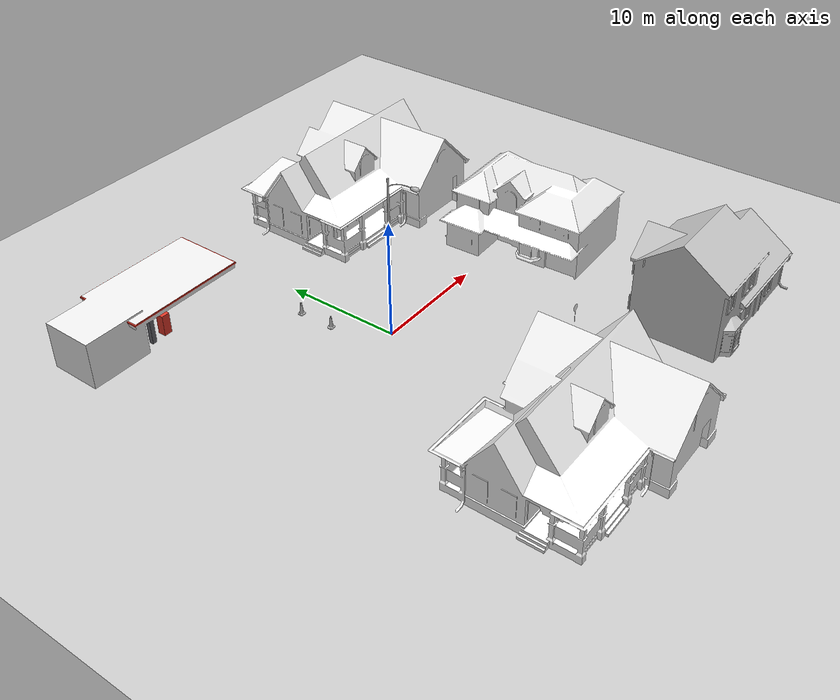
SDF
<sdf version="1.7">
 <world name="default">
  <light name="sun" type="directional">
   <pose>0 0 10 0 -0 0</pose>
   <diffuse>0.8 0.8 0.8 1</diffuse>
   <specular>0.2 0.2 0.2 1</specular>
   <attenuation>
    <range>1000</range>
    <constant>0.9</constant>
    <linear>0.01</linear>
    <quadratic>0.001</quadratic>
   </attenuation>
   <direction>-0.5 0.1 -0.9</direction>
   <spot><inner_angle>0</inner_angle><outer_angle>0</outer_angle><falloff>0</falloff></spot>
  </light>
  <model name="ground_plane">
   <static>1</static>
   <link name="link">
    <collision name="collision">
     <geometry><plane><normal>0 0 1</normal><size>100 100</size></plane></geometry>
     <surface><friction><ode><mu>100</mu><mu2>50</mu2></ode></friction></surface>
    </collision>
    <visual name="visual">
     <cast_shadows>0</cast_shadows>
     <geometry><plane><normal>0 0 1</normal><size>100 100</size></plane></geometry>
     <material>
      <script><uri>file://media/materials/scripts/gazebo.material</uri><name>Gazebo/Grey</name></script>
     </material>
    </visual>
   </link>
  </model>
  <gravity>0 0 -9.8</gravity>
  <magnetic_field>6e-06 2.3e-05 -4.2e-05</magnetic_field>
  <atmosphere type="adiabatic"/>
  <physics type="ode">
   <max_step_size>0.001</max_step_size>
   <real_time_factor>1</real_time_factor>
   <real_time_update_rate>1000</real_time_update_rate>
  </physics>
  <scene><ambient>0.4 0.4 0.4 1</ambient><background>0.7 0.7 0.7 1</background><shadows>1</shadows></scene>
  <audio><device>default</device></audio>
  <spherical_coordinates>
   <surface_model>EARTH_WGS84</surface_model>
   <latitude_deg>0</latitude_deg>
   <longitude_deg>0</longitude_deg>
   <elevation>0</elevation>
   <heading_deg>0</heading_deg>
  </spherical_coordinates>
  <model name="Gas Station">
   <static>1</static>
   <link name="link">
    <collision name="collision">
     <geometry><mesh><uri>model://gas_station/meshes/gas_station.dae</uri></mesh></geometry>
    </collision>
    <visual name="visual">
     <geometry><mesh><uri>model://gas_station/meshes/gas_station.dae</uri></mesh></geometry>
     <material>
      <script>
       <uri>model://gas_station/materials/scripts</uri>
       <uri>model://gas_station/materials/textures</uri>
       <name>GasStation/Diffuse</name>
      </script>
      <shader type="normal_map_tangent_space"><normal_map>GasStation_Normal.png</normal_map></shader>
     </material>
    </visual>
   </link>
   <pose>-11.2856 15.4522 0 0 -0 0</pose>
  </model>
  <model name="House 1">
   <static>1</static>
   <link name="link">
    <collision name="collision">
     <geometry><mesh><uri>model://house_1/meshes/house_1.dae</uri><scale>1.5 1.5 1.5</scale></mesh></geometry>
    </collision>
    <visual name="visual">
     <geometry><mesh><uri>model://house_1/meshes/house_1.dae</uri><scale>1.5 1.5 1.5</scale></mesh></geometry>
     <material>
      <script>
       <uri>model://house_1/materials/scripts</uri>
       <uri>model://house_1/materials/textures</uri>
       <name>House_1/Diffuse</name>
      </script>
      <shader type="normal_map_tangent_space"><normal_map>House_1_Normal.png</normal_map></shader>
     </material>
    </visual>
   </link>
   <pose>13.07 14.1552 0 0 -0 0</pose>
  </model>
  <model name="House 2">
   <static>1</static>
   <link name="link">
    <collision name="collision">
     <geometry><mesh><uri>model://house_2/meshes/house_2.dae</uri><scale>1.5 1.5 1.5</scale></mesh></geometry>
    </collision>
    <visual name="visual">
     <geometry><mesh><uri>model://house_2/meshes/house_2.dae</uri><scale>1.5 1.5 1.5</scale></mesh></geometry>
     <material>
      <script>
       <uri>model://house_2/materials/scripts</uri>
       <uri>model://house_2/materials/textures</uri>
       <uri>model://house_1/materials/textures</uri>
       <name>House_2/Diffuse</name>
      </script>
      <shader type="normal_map_tangent_space">
       <normal_map>model://house_1/materials/textures/House_1_Normal.png</normal_map>
      </shader>
     </material>
    </visual>
   </link>
   <pose>18.1684 -2.56944 0 0 -0 1.61058</pose>
  </model>
  <model name="Construction Cone">
   <link name="link">
    <collision name="collision">
     <geometry>
      <mesh><scale>10 10 10</scale><uri>model://construction_cone/meshes/construction_cone.dae</uri></mesh>
     </geometry>
    </collision>
    <visual name="visual">
     <geometry>
      <mesh><scale>10 10 10</scale><uri>model://construction_cone/meshes/construction_cone.dae</uri></mesh>
     </geometry>
    </visual>
    <inertial>
     <inertia><ixx>1</ixx><ixy>0</ixy><ixz>0</ixz><iyy>1</iyy><iyz>0</iyz><izz>1</izz></inertia>
     <mass>1</mass>
    </inertial>
   </link>
   <pose>-2.09867 7.35746 -0 0 -1e-06 0</pose>
  </model>
  <model name="Construction Cone_0">
   <link name="link">
    <collision name="collision">
     <geometry>
      <mesh><scale>10 10 10</scale><uri>model://construction_cone/meshes/construction_cone.dae</uri></mesh>
     </geometry>
    </collision>
    <visual name="visual">
     <geometry>
      <mesh><scale>10 10 10</scale><uri>model://construction_cone/meshes/construction_cone.dae</uri></mesh>
     </geometry>
    </visual>
    <inertial>
     <inertia><ixx>1</ixx><ixy>0</ixy><ixz>0</ixz><iyy>1</iyy><iyz>0</iyz><izz>1</izz></inertia>
     <mass>1</mass>
    </inertial>
   </link>
   <pose>-2.06691 4.32925 -0 0 -1e-06 0</pose>
  </model>
  <model name="House 3">
   <static>1</static>
   <link name="link">
    <collision name="collision">
     <geometry><mesh><uri>model://house_3/meshes/house_3.dae</uri><scale>1.5 1.5 1.5</scale></mesh></geometry>
    </collision>
    <visual name="visual">
     <geometry><mesh><uri>model://house_3/meshes/house_3.dae</uri><scale>1.5 1.5 1.5</scale></mesh></geometry>
     <material>
      <script>
       <uri>model://house_3/materials/scripts</uri>
       <uri>model://house_3/materials/textures</uri>
       <uri>model://house_1/materials/textures</uri>
       <name>House_3/Diffuse</name>
      </script>
      <shader type="normal_map_tangent_space">
       <normal_map>model://house_1/materials/textures/House_1_Normal.png</normal_map>
      </shader>
     </material>
    </visual>
   </link>
   <pose>18.2042 -17.9039 0 0 -0 0</pose>
  </model>
  <model name="Lamp Post">
   <static>1</static>
   <link name="link">
    <collision name="collision">
     <geometry><mesh><uri>model://lamp_post/meshes/lamp_post.dae</uri><scale>3 3 3</scale></mesh></geometry>
    </collision>
    <visual name="visual">
     <geometry><mesh><uri>model://lamp_post/meshes/lamp_post.dae</uri><scale>3 3 3</scale></mesh></geometry>
    </visual>
   </link>
   <pose>6.31694 5.08023 0 0 -0 0</pose>
  </model>
  <model name="Stop Sign">
   <static>1</static>
   <link name="link">
    <collision name="collision">
     <geometry><mesh><uri>model://stop_sign/meshes/stop_sign.dae</uri></mesh></geometry>
    </collision>
    <visual name="visual">
     <geometry><mesh><uri>model://stop_sign/meshes/stop_sign.dae</uri></mesh></geometry>
     <material>
      <script>
       <uri>model://stop_sign/materials/scripts</uri>
       <uri>model://stop_sign/materials/textures</uri>
       <name>StopSign/Diffuse</name>
      </script>
     </material>
    </visual>
   </link>
   <pose>9.56925 -10.5876 0 0 -0 0</pose>
  </model>
  <model name="House 1_0">
   <static>1</static>
   <link name="link">
    <collision name="collision">
     <geometry><mesh><uri>model://house_1/meshes/house_1.dae</uri><scale>1.5 1.5 1.5</scale></mesh></geometry>
    </collision>
    <visual name="visual">
     <geometry><mesh><uri>model://house_1/meshes/house_1.dae</uri><scale>1.5 1.5 1.5</scale></mesh></geometry>
     <material>
      <script>
       <uri>model://house_1/materials/scripts</uri>
       <uri>model://house_1/materials/textures</uri>
       <name>House_1/Diffuse</name>
      </script>
      <shader type="normal_map_tangent_space"><normal_map>House_1_Normal.png</normal_map></shader>
     </material>
    </visual>
   </link>
   <pose>-3.32262 -18.229 0 0 -0 0</pose>
  </model>
 </world>
</sdf>
